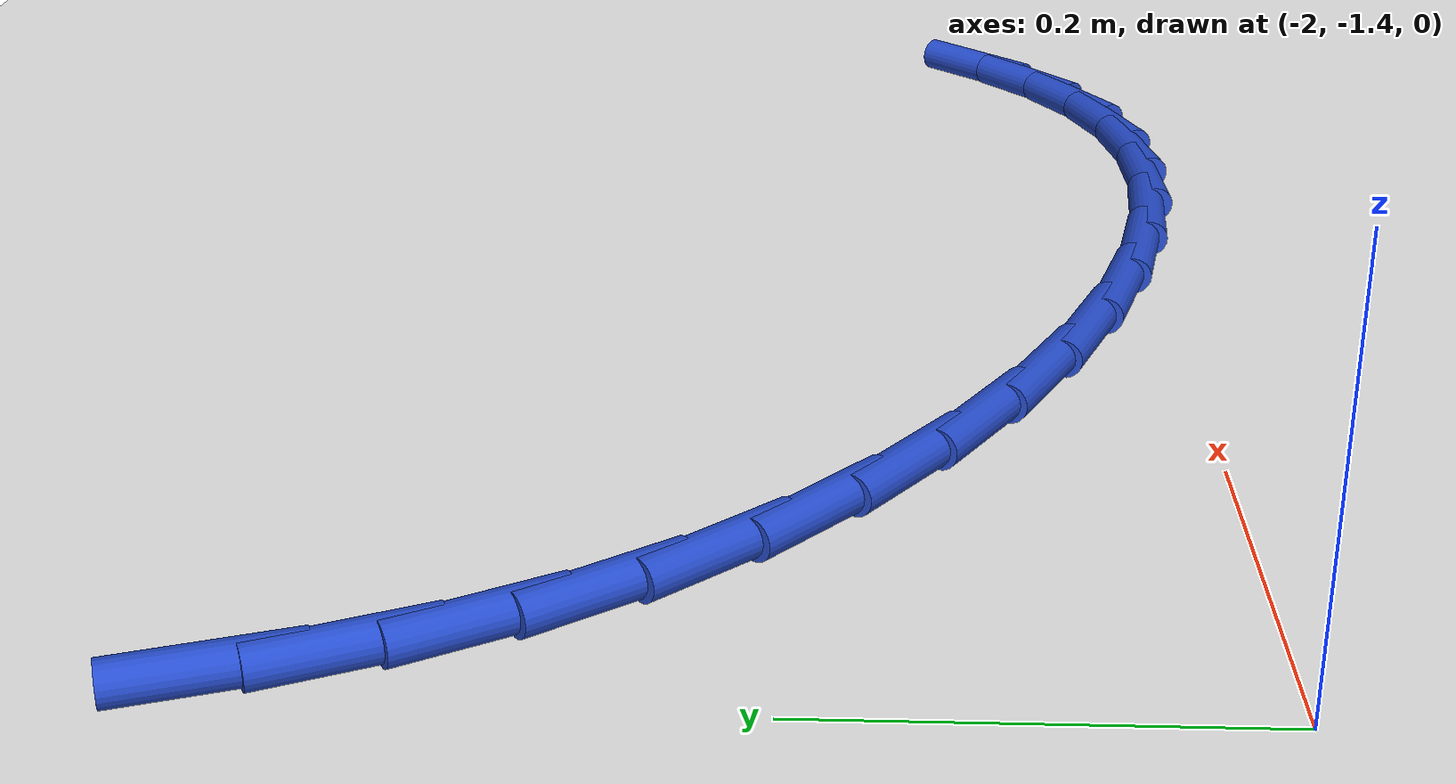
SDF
<sdf version="1.6">
 <world name="default">
  <model name="ground_plane">
   <static>1</static>
   <link name="link">
    <collision name="collision">
     <geometry><plane><normal>0 0 1</normal><size>100 100</size></plane></geometry>
     <surface><friction><ode><mu>100</mu><mu2>50</mu2></ode></friction></surface>
    </collision>
    <visual name="visual">
     <cast_shadows>0</cast_shadows>
     <geometry><plane><normal>0 0 1</normal><size>100 100</size></plane></geometry>
     <material>
      <script><uri>file://media/materials/scripts/gazebo.material</uri><name>Gazebo/WhiteGlow</name></script>
     </material>
    </visual>
   </link>
  </model>
  <model name="line">
   <link name="link_95">
    <pose>-1.9875050846872453 -0.9843825411925246 0.01 0 1.57 -1.2512963150569991</pose>
    <collision name="collision">
     <geometry><cylinder><radius>0.01</radius><length>0.08</length></cylinder></geometry>
    </collision>
    <visual name="visual">
     <material>
      <script><name>Gazebo/Blue</name><uri>file://media/materials/scripts/gazebo.material</uri></script>
     </material>
     <geometry><cylinder><radius>0.01</radius><length>0.08</length></cylinder></geometry>
    </visual>
   </link>
   <link name="link_96">
    <pose>-1.971046975493373 -1.0341297839565486 0.01 0 1.57 -1.1620251022469015</pose>
    <collision name="collision">
     <geometry><cylinder><radius>0.01</radius><length>0.08</length></cylinder></geometry>
    </collision>
    <visual name="visual">
     <material>
      <script><name>Gazebo/Blue</name><uri>file://media/materials/scripts/gazebo.material</uri></script>
     </material>
     <geometry><cylinder><radius>0.01</radius><length>0.08</length></cylinder></geometry>
    </visual>
   </link>
   <link name="link_97">
    <pose>-1.9501176943681189 -1.0824462153636552 0.01 0 1.57 -1.0643984076369655</pose>
    <collision name="collision">
     <geometry><cylinder><radius>0.01</radius><length>0.08</length></cylinder></geometry>
    </collision>
    <visual name="visual">
     <material>
      <script><name>Gazebo/Blue</name><uri>file://media/materials/scripts/gazebo.material</uri></script>
     </material>
     <geometry><cylinder><radius>0.01</radius><length>0.08</length></cylinder></geometry>
    </visual>
   </link>
   <link name="link_98">
    <pose>-1.9242885350720107 -1.12901552402288 0.01 0 1.57 -0.9600156014730747</pose>
    <collision name="collision">
     <geometry><cylinder><radius>0.01</radius><length>0.08</length></cylinder></geometry>
    </collision>
    <visual name="visual">
     <material>
      <script><name>Gazebo/Blue</name><uri>file://media/materials/scripts/gazebo.material</uri></script>
     </material>
     <geometry><cylinder><radius>0.01</radius><length>0.08</length></cylinder></geometry>
    </visual>
   </link>
   <link name="link_99">
    <pose>-1.893130791365572 -1.1735213985432618 0.01 0 1.57 -0.8526352356441216</pose>
    <collision name="collision">
     <geometry><cylinder><radius>0.01</radius><length>0.08</length></cylinder></geometry>
    </collision>
    <visual name="visual">
     <material>
      <script><name>Gazebo/Blue</name><uri>file://media/materials/scripts/gazebo.material</uri></script>
     </material>
     <geometry><cylinder><radius>0.01</radius><length>0.08</length></cylinder></geometry>
    </visual>
   </link>
   <link name="link_100">
    <pose>-1.856335531862875 -1.2156299269313946 0.01 0 1.57 -0.7526906005547969</pose>
    <collision name="collision">
     <geometry><cylinder><radius>0.01</radius><length>0.08</length></cylinder></geometry>
    </collision>
    <visual name="visual">
     <material>
      <script><name>Gazebo/Blue</name><uri>file://media/materials/scripts/gazebo.material</uri></script>
     </material>
     <geometry><cylinder><radius>0.01</radius><length>0.08</length></cylinder></geometry>
    </visual>
   </link>
   <link name="link_101">
    <pose>-1.8144246596995965 -1.2548851082271355 0.01 0 1.57 -0.6610125403621029</pose>
    <collision name="collision">
     <geometry><cylinder><radius>0.01</radius><length>0.08</length></cylinder></geometry>
    </collision>
    <visual name="visual">
     <material>
      <script><name>Gazebo/Blue</name><uri>file://media/materials/scripts/gazebo.material</uri></script>
     </material>
     <geometry><cylinder><radius>0.01</radius><length>0.08</length></cylinder></geometry>
    </visual>
   </link>
   <link name="link_102">
    <pose>-1.7682721985007999 -1.290779198282502 0.01 0 1.57 -0.5740702051887114</pose>
    <collision name="collision">
     <geometry><cylinder><radius>0.01</radius><length>0.08</length></cylinder></geometry>
    </collision>
    <visual name="visual">
     <material>
      <script><name>Gazebo/Blue</name><uri>file://media/materials/scripts/gazebo.material</uri></script>
     </material>
     <geometry><cylinder><radius>0.01</radius><length>0.08</length></cylinder></geometry>
    </visual>
   </link>
   <link name="link_103">
    <pose>-1.7187534420704658 -1.3228042663000301 0.01 0 1.57 -0.4886027952261854</pose>
    <collision name="collision">
     <geometry><cylinder><radius>0.01</radius><length>0.08</length></cylinder></geometry>
    </collision>
    <visual name="visual">
     <material>
      <script><name>Gazebo/Blue</name><uri>file://media/materials/scripts/gazebo.material</uri></script>
     </material>
     <geometry><cylinder><radius>0.01</radius><length>0.08</length></cylinder></geometry>
    </visual>
   </link>
   <link name="link_104">
    <pose>-1.666743684212574 -1.3504523814822553 0.01 0 1.57 -0.4014347651554188</pose>
    <collision name="collision">
     <geometry><cylinder><radius>0.01</radius><length>0.08</length></cylinder></geometry>
    </collision>
    <visual name="visual">
     <material>
      <script><name>Gazebo/Blue</name><uri>file://media/materials/scripts/gazebo.material</uri></script>
     </material>
     <geometry><cylinder><radius>0.01</radius><length>0.08</length></cylinder></geometry>
    </visual>
   </link>
   <link name="link_105">
    <pose>-1.6131182187311035 -1.373215613031715 0.01 0 1.57 -0.3092579797256942</pose>
    <collision name="collision">
     <geometry><cylinder><radius>0.01</radius><length>0.08</length></cylinder></geometry>
    </collision>
    <visual name="visual">
     <material>
      <script><name>Gazebo/Blue</name><uri>file://media/materials/scripts/gazebo.material</uri></script>
     </material>
     <geometry><cylinder><radius>0.01</radius><length>0.08</length></cylinder></geometry>
    </visual>
   </link>
   <link name="link_106">
    <pose>-1.5587523394300353 -1.3905860301509452 0.01 0 1.57 -0.20842514812309343</pose>
    <collision name="collision">
     <geometry><cylinder><radius>0.01</radius><length>0.08</length></cylinder></geometry>
    </collision>
    <visual name="visual">
     <material>
      <script><name>Gazebo/Blue</name><uri>file://media/materials/scripts/gazebo.material</uri></script>
     </material>
     <geometry><cylinder><radius>0.01</radius><length>0.08</length></cylinder></geometry>
    </visual>
   </link>
   <link name="link_107">
    <pose>-1.5045213401133477 -1.4020557020424826 0.01 0 1.57 -0.0948091778283758</pose>
    <collision name="collision">
     <geometry><cylinder><radius>0.01</radius><length>0.08</length></cylinder></geometry>
    </collision>
    <visual name="visual">
     <material>
      <script><name>Gazebo/Blue</name><uri>file://media/materials/scripts/gazebo.material</uri></script>
     </material>
     <geometry><cylinder><radius>0.01</radius><length>0.08</length></cylinder></geometry>
    </visual>
   </link>
   <link name="link_108">
    <pose>-1.4513005145850209 -1.4071166979088632 0.01 0 1.57 0.03613110898747238</pose>
    <collision name="collision">
     <geometry><cylinder><radius>0.01</radius><length>0.08</length></cylinder></geometry>
    </collision>
    <visual name="visual">
     <material>
      <script><name>Gazebo/Blue</name><uri>file://media/materials/scripts/gazebo.material</uri></script>
     </material>
     <geometry><cylinder><radius>0.01</radius><length>0.08</length></cylinder></geometry>
    </visual>
   </link>
   <link name="link_109">
    <pose>-1.3999651566490363 -1.4052610869526236 0.01 0 1.57 0.18877460879281363</pose>
    <collision name="collision">
     <geometry><cylinder><radius>0.01</radius><length>0.08</length></cylinder></geometry>
    </collision>
    <visual name="visual">
     <material>
      <script><name>Gazebo/Blue</name><uri>file://media/materials/scripts/gazebo.material</uri></script>
     </material>
     <geometry><cylinder><radius>0.01</radius><length>0.08</length></cylinder></geometry>
    </visual>
   </link>
   <link name="link_110">
    <pose>-1.3513905601093719 -1.3959809383763009 0.01 0 1.57 0.36578823033098007</pose>
    <collision name="collision">
     <geometry><cylinder><radius>0.01</radius><length>0.08</length></cylinder></geometry>
    </collision>
    <visual name="visual">
     <material>
      <script><name>Gazebo/Blue</name><uri>file://media/materials/scripts/gazebo.material</uri></script>
     </material>
     <geometry><cylinder><radius>0.01</radius><length>0.08</length></cylinder></geometry>
    </visual>
   </link>
   <link name="link_111">
    <pose>-1.3064520170113005 -1.378768323409145 0.01 0 1.57 0.5557779760567904</pose>
    <collision name="collision">
     <geometry><cylinder><radius>0.01</radius><length>0.08</length></cylinder></geometry>
    </collision>
    <visual name="visual">
     <material>
      <script><name>Gazebo/Blue</name><uri>file://media/materials/scripts/gazebo.material</uri></script>
     </material>
     <geometry><cylinder><radius>0.01</radius><length>0.08</length></cylinder></geometry>
    </visual>
   </link>
   <link name="link_112">
    <pose>-1.2657178816185697 -1.3534690252184314 0.01 0 1.57 0.7144995353729802</pose>
    <collision name="collision">
     <geometry><cylinder><radius>0.01</radius><length>0.08</length></cylinder></geometry>
    </collision>
    <visual name="visual">
     <material>
      <script><name>Gazebo/Blue</name><uri>file://media/materials/scripts/gazebo.material</uri></script>
     </material>
     <geometry><cylinder><radius>0.01</radius><length>0.08</length></cylinder></geometry>
    </visual>
   </link>
   <link name="link_113">
    <pose>-1.2285940406275326 -1.321268442622851 0.01 0 1.57 0.8300540521198307</pose>
    <collision name="collision">
     <geometry><cylinder><radius>0.01</radius><length>0.08</length></cylinder></geometry>
    </collision>
    <visual name="visual">
     <material>
      <script><name>Gazebo/Blue</name><uri>file://media/materials/scripts/gazebo.material</uri></script>
     </material>
     <geometry><cylinder><radius>0.01</radius><length>0.08</length></cylinder></geometry>
    </visual>
   </link>
  </model>
 </world>
</sdf>
